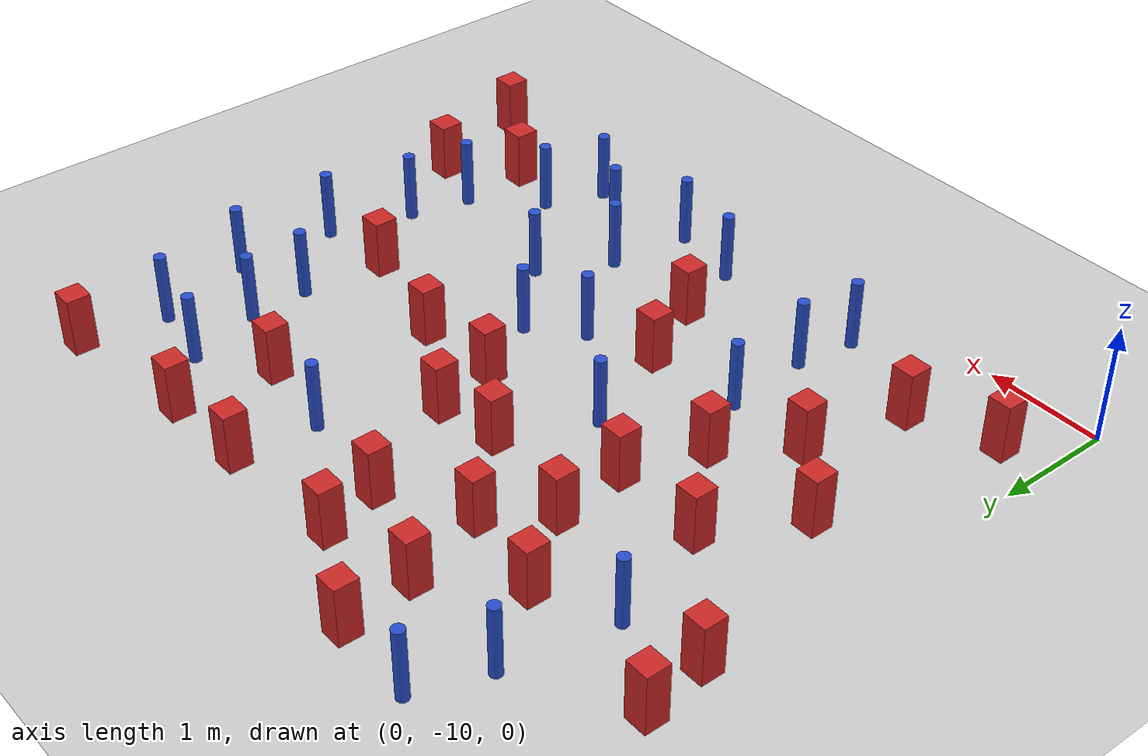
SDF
<sdf version="1.6">
 <world name="default">
  <model name="ground_plane">
   <static>1</static>
   <link name="link">
    <collision name="collision">
     <geometry><plane><normal>0 0 1</normal><size>100 100</size></plane></geometry>
     <surface><friction><ode><mu>100</mu><mu2>50</mu2></ode></friction></surface>
    </collision>
    <visual name="visual">
     <cast_shadows>0</cast_shadows>
     <geometry><plane><normal>0 0 1</normal><size>100 100</size></plane></geometry>
     <material>
      <ambient>1.0 1.0 1.0 1.0</ambient>
      <diffuse>0.8 0.8 0.8 1.0</diffuse>
      <specular>0.01 0.01 0.01 1.000000</specular>
     </material>
    </visual>
   </link>
  </model>
  <model name="square_post_obstacle0">
   <static>true</static>
   <pose>3.41499877253 -6.9940622312 8.22691968438e-08 7.22125133819e-06 -7.54495500217e-07 2.29674213826e-05</pose>
   <link name="link">
    <pose>0 0 0.25 0 -0 0</pose>
    <inertial>
     <mass>100</mass>
     <inertia>
      <ixx>0.166667</ixx>
      <ixy>0</ixy>
      <ixz>0</ixz>
      <iyy>0.166667</iyy>
      <iyz>0</iyz>
      <izz>0.166667</izz>
     </inertia>
    </inertial>
    <collision name="collision"><geometry><box><size>.2 .2 .5</size></box></geometry></collision>
    <visual name="visual">
     <geometry><box><size>.2 .2 .5</size></box></geometry>
     <material>
      <script><name>Gazebo/Red</name><uri>file://media/materials/scripts/gazebo.material</uri></script>
     </material>
    </visual>
   </link>
  </model>
  <model name="square_post_obstacle10">
   <static>true</static>
   <pose>3.06027018239 -8.713658144 8.22691968438e-08 7.22125133819e-06 -7.54495500217e-07 2.29674213826e-05</pose>
   <link name="link">
    <pose>0 0 0.25 0 -0 0</pose>
    <inertial>
     <mass>100</mass>
     <inertia>
      <ixx>0.166667</ixx>
      <ixy>0</ixy>
      <ixz>0</ixz>
      <iyy>0.166667</iyy>
      <iyz>0</iyz>
      <izz>0.166667</izz>
     </inertia>
    </inertial>
    <collision name="collision"><geometry><box><size>.2 .2 .5</size></box></geometry></collision>
    <visual name="visual">
     <geometry><box><size>.2 .2 .5</size></box></geometry>
     <material>
      <script><name>Gazebo/Red</name><uri>file://media/materials/scripts/gazebo.material</uri></script>
     </material>
    </visual>
   </link>
  </model>
  <model name="square_post_obstacle15">
   <static>true</static>
   <pose>4.46709414449 -5.74250624723 8.22691968438e-08 7.2212513382e-06 -7.54495500217e-07 2.29674213826e-05</pose>
   <link name="link">
    <pose>0 0 0.25 0 -0 0</pose>
    <inertial>
     <mass>100</mass>
     <inertia>
      <ixx>0.166667</ixx>
      <ixy>0</ixy>
      <ixz>0</ixz>
      <iyy>0.166667</iyy>
      <iyz>0</iyz>
      <izz>0.166667</izz>
     </inertia>
    </inertial>
    <collision name="collision"><geometry><box><size>.2 .2 .5</size></box></geometry></collision>
    <visual name="visual">
     <geometry><box><size>.2 .2 .5</size></box></geometry>
     <material>
      <script><name>Gazebo/Red</name><uri>file://media/materials/scripts/gazebo.material</uri></script>
     </material>
    </visual>
   </link>
  </model>
  <model name="pole_obstacle9">
   <static>true</static>
   <pose>2.44209046264 -7.28755723287 2.88873142074e-08 -9.90536689859e-09 4.60219948989e-07 -1.20965994961e-07</pose>
   <link name="link">
    <pose>0 0 0.3 0 -0 0</pose>
    <inertial>
     <mass>1</mass>
     <inertia><ixx>0.145833</ixx><ixy>0</ixy><ixz>0</ixz><iyy>0.145833</iyy><iyz>0</iyz><izz>0.125</izz></inertia>
    </inertial>
    <collision name="collision">
     <geometry><cylinder><radius>0.05</radius><length>.6</length></cylinder></geometry>
    </collision>
    <visual name="visual">
     <geometry><cylinder><radius>0.05</radius><length>.6</length></cylinder></geometry>
     <material>
      <script><name>Gazebo/Blue</name><uri>file://media/materials/scripts/gazebo.material</uri></script>
     </material>
    </visual>
   </link>
  </model>
  <model name="square_post_obstacle21">
   <static>true</static>
   <pose>2.12126127507 -5.90866148709 8.22691968438e-08 7.2212513382e-06 -7.54495500217e-07 2.29674213826e-05</pose>
   <link name="link">
    <pose>0 0 0.25 0 -0 0</pose>
    <inertial>
     <mass>100</mass>
     <inertia>
      <ixx>0.166667</ixx>
      <ixy>0</ixy>
      <ixz>0</ixz>
      <iyy>0.166667</iyy>
      <iyz>0</iyz>
      <izz>0.166667</izz>
     </inertia>
    </inertial>
    <collision name="collision"><geometry><box><size>.2 .2 .5</size></box></geometry></collision>
    <visual name="visual">
     <geometry><box><size>.2 .2 .5</size></box></geometry>
     <material>
      <script><name>Gazebo/Red</name><uri>file://media/materials/scripts/gazebo.material</uri></script>
     </material>
    </visual>
   </link>
  </model>
  <model name="pole_obstacle13">
   <static>true</static>
   <pose>1.12881644602 -4.58372194554 2.88873142074e-08 -9.90536689852e-09 4.60219948989e-07 -1.2096599496e-07</pose>
   <link name="link">
    <pose>0 0 0.3 0 -0 0</pose>
    <inertial>
     <mass>1</mass>
     <inertia><ixx>0.145833</ixx><ixy>0</ixy><ixz>0</ixz><iyy>0.145833</iyy><iyz>0</iyz><izz>0.125</izz></inertia>
    </inertial>
    <collision name="collision">
     <geometry><cylinder><radius>0.05</radius><length>.6</length></cylinder></geometry>
    </collision>
    <visual name="visual">
     <geometry><cylinder><radius>0.05</radius><length>.6</length></cylinder></geometry>
     <material>
      <script><name>Gazebo/Blue</name><uri>file://media/materials/scripts/gazebo.material</uri></script>
     </material>
    </visual>
   </link>
  </model>
  <model name="square_post_obstacle30">
   <static>true</static>
   <pose>2.66997323416 -5.03621889605 8.22691968438e-08 7.2212513382e-06 -7.54495500217e-07 2.29674213826e-05</pose>
   <link name="link">
    <pose>0 0 0.25 0 -0 0</pose>
    <inertial>
     <mass>100</mass>
     <inertia>
      <ixx>0.166667</ixx>
      <ixy>0</ixy>
      <ixz>0</ixz>
      <iyy>0.166667</iyy>
      <iyz>0</iyz>
      <izz>0.166667</izz>
     </inertia>
    </inertial>
    <collision name="collision"><geometry><box><size>.2 .2 .5</size></box></geometry></collision>
    <visual name="visual">
     <geometry><box><size>.2 .2 .5</size></box></geometry>
     <material>
      <script><name>Gazebo/Red</name><uri>file://media/materials/scripts/gazebo.material</uri></script>
     </material>
    </visual>
   </link>
  </model>
  <model name="pole_obstacle22">
   <static>true</static>
   <pose>5.65588016244 -7.86392539071 2.88873142074e-08 -9.90536690842e-09 4.60219948965e-07 -1.20965994976e-07</pose>
   <link name="link">
    <pose>0 0 0.3 0 -0 0</pose>
    <inertial>
     <mass>1</mass>
     <inertia><ixx>0.145833</ixx><ixy>0</ixy><ixz>0</ixz><iyy>0.145833</iyy><iyz>0</iyz><izz>0.125</izz></inertia>
    </inertial>
    <collision name="collision">
     <geometry><cylinder><radius>0.05</radius><length>.6</length></cylinder></geometry>
    </collision>
    <visual name="visual">
     <geometry><cylinder><radius>0.05</radius><length>.6</length></cylinder></geometry>
     <material>
      <script><name>Gazebo/Blue</name><uri>file://media/materials/scripts/gazebo.material</uri></script>
     </material>
    </visual>
   </link>
  </model>
  <model name="square_post_obstacle34">
   <static>true</static>
   <pose>1.86030978834 -6.99101832806 8.22691968438e-08 7.2212513382e-06 -7.54495500217e-07 2.29674213826e-05</pose>
   <link name="link">
    <pose>0 0 0.25 0 -0 0</pose>
    <inertial>
     <mass>100</mass>
     <inertia>
      <ixx>0.166667</ixx>
      <ixy>0</ixy>
      <ixz>0</ixz>
      <iyy>0.166667</iyy>
      <iyz>0</iyz>
      <izz>0.166667</izz>
     </inertia>
    </inertial>
    <collision name="collision"><geometry><box><size>.2 .2 .5</size></box></geometry></collision>
    <visual name="visual">
     <geometry><box><size>.2 .2 .5</size></box></geometry>
     <material>
      <script><name>Gazebo/Red</name><uri>file://media/materials/scripts/gazebo.material</uri></script>
     </material>
    </visual>
   </link>
  </model>
  <model name="square_post_obstacle42">
   <static>true</static>
   <pose>2.80579223207 -5.52921821048 8.22691968438e-08 7.22125133819e-06 -7.54495500217e-07 2.29674213826e-05</pose>
   <link name="link">
    <pose>0 0 0.25 0 -0 0</pose>
    <inertial>
     <mass>100</mass>
     <inertia>
      <ixx>0.166667</ixx>
      <ixy>0</ixy>
      <ixz>0</ixz>
      <iyy>0.166667</iyy>
      <iyz>0</iyz>
      <izz>0.166667</izz>
     </inertia>
    </inertial>
    <collision name="collision"><geometry><box><size>.2 .2 .5</size></box></geometry></collision>
    <visual name="visual">
     <geometry><box><size>.2 .2 .5</size></box></geometry>
     <material>
      <script><name>Gazebo/Red</name><uri>file://media/materials/scripts/gazebo.material</uri></script>
     </material>
    </visual>
   </link>
  </model>
  <model name="square_post_obstacle46">
   <static>true</static>
   <pose>1.05088032521 -6.96764763988 8.22691968438e-08 7.2212513382e-06 -7.54495500217e-07 2.29674213826e-05</pose>
   <link name="link">
    <pose>0 0 0.25 0 -0 0</pose>
    <inertial>
     <mass>100</mass>
     <inertia>
      <ixx>0.166667</ixx>
      <ixy>0</ixy>
      <ixz>0</ixz>
      <iyy>0.166667</iyy>
      <iyz>0</iyz>
      <izz>0.166667</izz>
     </inertia>
    </inertial>
    <collision name="collision"><geometry><box><size>.2 .2 .5</size></box></geometry></collision>
    <visual name="visual">
     <geometry><box><size>.2 .2 .5</size></box></geometry>
     <material>
      <script><name>Gazebo/Red</name><uri>file://media/materials/scripts/gazebo.material</uri></script>
     </material>
    </visual>
   </link>
  </model>
  <model name="pole_obstacle47">
   <static>true</static>
   <pose>3.26157933969 -9.32210993289 2.88873142074e-08 -9.90536692318e-09 4.6021994893e-07 -1.20965994988e-07</pose>
   <link name="link">
    <pose>0 0 0.3 0 -0 0</pose>
    <inertial>
     <mass>1</mass>
     <inertia><ixx>0.145833</ixx><ixy>0</ixy><ixz>0</ixz><iyy>0.145833</iyy><iyz>0</iyz><izz>0.125</izz></inertia>
    </inertial>
    <collision name="collision">
     <geometry><cylinder><radius>0.05</radius><length>.6</length></cylinder></geometry>
    </collision>
    <visual name="visual">
     <geometry><cylinder><radius>0.05</radius><length>.6</length></cylinder></geometry>
     <material>
      <script><name>Gazebo/Blue</name><uri>file://media/materials/scripts/gazebo.material</uri></script>
     </material>
    </visual>
   </link>
  </model>
  <model name="pole_obstacle50">
   <static>true</static>
   <pose>1.96846414027 -8.20121474283 2.88873142074e-08 -9.90536690287e-09 4.60219948978e-07 -1.20965994966e-07</pose>
   <link name="link">
    <pose>0 0 0.3 0 -0 0</pose>
    <inertial>
     <mass>1</mass>
     <inertia><ixx>0.145833</ixx><ixy>0</ixy><ixz>0</ixz><iyy>0.145833</iyy><iyz>0</iyz><izz>0.125</izz></inertia>
    </inertial>
    <collision name="collision">
     <geometry><cylinder><radius>0.05</radius><length>.6</length></cylinder></geometry>
    </collision>
    <visual name="visual">
     <geometry><cylinder><radius>0.05</radius><length>.6</length></cylinder></geometry>
     <material>
      <script><name>Gazebo/Blue</name><uri>file://media/materials/scripts/gazebo.material</uri></script>
     </material>
    </visual>
   </link>
  </model>
  <model name="square_post_obstacle57">
   <static>true</static>
   <pose>5.74404891023 -4.76503172191 8.22691968438e-08 7.22125133819e-06 -7.54495500217e-07 2.29674213826e-05</pose>
   <link name="link">
    <pose>0 0 0.25 0 -0 0</pose>
    <inertial>
     <mass>100</mass>
     <inertia>
      <ixx>0.166667</ixx>
      <ixy>0</ixy>
      <ixz>0</ixz>
      <iyy>0.166667</iyy>
      <iyz>0</iyz>
      <izz>0.166667</izz>
     </inertia>
    </inertial>
    <collision name="collision"><geometry><box><size>.2 .2 .5</size></box></geometry></collision>
    <visual name="visual">
     <geometry><box><size>.2 .2 .5</size></box></geometry>
     <material>
      <script><name>Gazebo/Red</name><uri>file://media/materials/scripts/gazebo.material</uri></script>
     </material>
    </visual>
   </link>
  </model>
  <model name="square_post_obstacle59">
   <static>true</static>
   <pose>1.65880312718 -7.65387423752 8.22691968438e-08 7.2212513382e-06 -7.54495500217e-07 2.29674213826e-05</pose>
   <link name="link">
    <pose>0 0 0.25 0 -0 0</pose>
    <inertial>
     <mass>100</mass>
     <inertia>
      <ixx>0.166667</ixx>
      <ixy>0</ixy>
      <ixz>0</ixz>
      <iyy>0.166667</iyy>
      <iyz>0</iyz>
      <izz>0.166667</izz>
     </inertia>
    </inertial>
    <collision name="collision"><geometry><box><size>.2 .2 .5</size></box></geometry></collision>
    <visual name="visual">
     <geometry><box><size>.2 .2 .5</size></box></geometry>
     <material>
      <script><name>Gazebo/Red</name><uri>file://media/materials/scripts/gazebo.material</uri></script>
     </material>
    </visual>
   </link>
  </model>
  <model name="pole_obstacle61">
   <static>true</static>
   <pose>5.85114196582 -7.15675604072 2.88873142074e-08 -9.90536690842e-09 4.60219948965e-07 -1.20965994976e-07</pose>
   <link name="link">
    <pose>0 0 0.3 0 -0 0</pose>
    <inertial>
     <mass>1</mass>
     <inertia><ixx>0.145833</ixx><ixy>0</ixy><ixz>0</ixz><iyy>0.145833</iyy><iyz>0</iyz><izz>0.125</izz></inertia>
    </inertial>
    <collision name="collision">
     <geometry><cylinder><radius>0.05</radius><length>.6</length></cylinder></geometry>
    </collision>
    <visual name="visual">
     <geometry><cylinder><radius>0.05</radius><length>.6</length></cylinder></geometry>
     <material>
      <script><name>Gazebo/Blue</name><uri>file://media/materials/scripts/gazebo.material</uri></script>
     </material>
    </visual>
   </link>
  </model>
  <model name="square_post_obstacle75">
   <static>true</static>
   <pose>0.11636944321 -6.18953005078 8.22691968438e-08 7.2212513382e-06 -7.54495500217e-07 2.29674213826e-05</pose>
   <link name="link">
    <pose>0 0 0.25 0 -0 0</pose>
    <inertial>
     <mass>100</mass>
     <inertia>
      <ixx>0.166667</ixx>
      <ixy>0</ixy>
      <ixz>0</ixz>
      <iyy>0.166667</iyy>
      <iyz>0</iyz>
      <izz>0.166667</izz>
     </inertia>
    </inertial>
    <collision name="collision"><geometry><box><size>.2 .2 .5</size></box></geometry></collision>
    <visual name="visual">
     <geometry><box><size>.2 .2 .5</size></box></geometry>
     <material>
      <script><name>Gazebo/Red</name><uri>file://media/materials/scripts/gazebo.material</uri></script>
     </material>
    </visual>
   </link>
  </model>
  <model name="pole_obstacle72">
   <static>true</static>
   <pose>3.98511871374 -8.73747123381 2.88873142074e-08 -9.90536692324e-09 4.6021994893e-07 -1.20965994987e-07</pose>
   <link name="link">
    <pose>0 0 0.3 0 -0 0</pose>
    <inertial>
     <mass>1</mass>
     <inertia><ixx>0.145833</ixx><ixy>0</ixy><ixz>0</ixz><iyy>0.145833</iyy><iyz>0</iyz><izz>0.125</izz></inertia>
    </inertial>
    <collision name="collision">
     <geometry><cylinder><radius>0.05</radius><length>.6</length></cylinder></geometry>
    </collision>
    <visual name="visual">
     <geometry><cylinder><radius>0.05</radius><length>.6</length></cylinder></geometry>
     <material>
      <script><name>Gazebo/Blue</name><uri>file://media/materials/scripts/gazebo.material</uri></script>
     </material>
    </visual>
   </link>
  </model>
  <model name="pole_obstacle82">
   <static>true</static>
   <pose>5.05393058101 -8.86143184928 2.88873142074e-08 -9.9053668967e-09 4.60219948993e-07 -1.20965994957e-07</pose>
   <link name="link">
    <pose>0 0 0.3 0 -0 0</pose>
    <inertial>
     <mass>1</mass>
     <inertia><ixx>0.145833</ixx><ixy>0</ixy><ixz>0</ixz><iyy>0.145833</iyy><iyz>0</iyz><izz>0.125</izz></inertia>
    </inertial>
    <collision name="collision">
     <geometry><cylinder><radius>0.05</radius><length>.6</length></cylinder></geometry>
    </collision>
    <visual name="visual">
     <geometry><cylinder><radius>0.05</radius><length>.6</length></cylinder></geometry>
     <material>
      <script><name>Gazebo/Blue</name><uri>file://media/materials/scripts/gazebo.material</uri></script>
     </material>
    </visual>
   </link>
  </model>
  <model name="square_post_obstacle82">
   <static>true</static>
   <pose>6.06898570075 -8.54711648579 8.22691968438e-08 7.22125133819e-06 -7.54495500217e-07 2.29674213826e-05</pose>
   <link name="link">
    <pose>0 0 0.25 0 -0 0</pose>
    <inertial>
     <mass>100</mass>
     <inertia>
      <ixx>0.166667</ixx>
      <ixy>0</ixy>
      <ixz>0</ixz>
      <iyy>0.166667</iyy>
      <iyz>0</iyz>
      <izz>0.166667</izz>
     </inertia>
    </inertial>
    <collision name="collision"><geometry><box><size>.2 .2 .5</size></box></geometry></collision>
    <visual name="visual">
     <geometry><box><size>.2 .2 .5</size></box></geometry>
     <material>
      <script><name>Gazebo/Red</name><uri>file://media/materials/scripts/gazebo.material</uri></script>
     </material>
    </visual>
   </link>
  </model>
  <model name="pole_obstacle91">
   <static>true</static>
   <pose>5.21240568172 -5.99870983056 2.88873142074e-08 -9.90536690842e-09 4.60219948965e-07 -1.20965994976e-07</pose>
   <link name="link">
    <pose>0 0 0.3 0 -0 0</pose>
    <inertial>
     <mass>1</mass>
     <inertia><ixx>0.145833</ixx><ixy>0</ixy><ixz>0</ixz><iyy>0.145833</iyy><iyz>0</iyz><izz>0.125</izz></inertia>
    </inertial>
    <collision name="collision">
     <geometry><cylinder><radius>0.05</radius><length>.6</length></cylinder></geometry>
    </collision>
    <visual name="visual">
     <geometry><cylinder><radius>0.05</radius><length>.6</length></cylinder></geometry>
     <material>
      <script><name>Gazebo/Blue</name><uri>file://media/materials/scripts/gazebo.material</uri></script>
     </material>
    </visual>
   </link>
  </model>
  <model name="square_post_obstacle83">
   <static>true</static>
   <pose>0.655817231026 -7.70713633223 8.22691968438e-08 7.2212513382e-06 -7.54495500217e-07 2.29674213826e-05</pose>
   <link name="link">
    <pose>0 0 0.25 0 -0 0</pose>
    <inertial>
     <mass>100</mass>
     <inertia>
      <ixx>0.166667</ixx>
      <ixy>0</ixy>
      <ixz>0</ixz>
      <iyy>0.166667</iyy>
      <iyz>0</iyz>
      <izz>0.166667</izz>
     </inertia>
    </inertial>
    <collision name="collision"><geometry><box><size>.2 .2 .5</size></box></geometry></collision>
    <visual name="visual">
     <geometry><box><size>.2 .2 .5</size></box></geometry>
     <material>
      <script><name>Gazebo/Red</name><uri>file://media/materials/scripts/gazebo.material</uri></script>
     </material>
    </visual>
   </link>
  </model>
  <model name="pole_obstacle105">
   <static>true</static>
   <pose>4.86913225671 -9.35954162575 2.88873142074e-08 -9.9053668967e-09 4.60219948993e-07 -1.20965994957e-07</pose>
   <link name="link">
    <pose>0 0 0.3 0 -0 0</pose>
    <inertial>
     <mass>1</mass>
     <inertia><ixx>0.145833</ixx><ixy>0</ixy><ixz>0</ixz><iyy>0.145833</iyy><iyz>0</iyz><izz>0.125</izz></inertia>
    </inertial>
    <collision name="collision">
     <geometry><cylinder><radius>0.05</radius><length>.6</length></cylinder></geometry>
    </collision>
    <visual name="visual">
     <geometry><cylinder><radius>0.05</radius><length>.6</length></cylinder></geometry>
     <material>
      <script><name>Gazebo/Blue</name><uri>file://media/materials/scripts/gazebo.material</uri></script>
     </material>
    </visual>
   </link>
  </model>
  <model name="pole_obstacle109">
   <static>true</static>
   <pose>5.63096577014 -5.47029018819 2.88873142074e-08 -9.90536690842e-09 4.60219948965e-07 -1.20965994976e-07</pose>
   <link name="link">
    <pose>0 0 0.3 0 -0 0</pose>
    <inertial>
     <mass>1</mass>
     <inertia><ixx>0.145833</ixx><ixy>0</ixy><ixz>0</ixz><iyy>0.145833</iyy><iyz>0</iyz><izz>0.125</izz></inertia>
    </inertial>
    <collision name="collision">
     <geometry><cylinder><radius>0.05</radius><length>.6</length></cylinder></geometry>
    </collision>
    <visual name="visual">
     <geometry><cylinder><radius>0.05</radius><length>.6</length></cylinder></geometry>
     <material>
      <script><name>Gazebo/Blue</name><uri>file://media/materials/scripts/gazebo.material</uri></script>
     </material>
    </visual>
   </link>
  </model>
  <model name="square_post_obstacle97">
   <static>true</static>
   <pose>1.78347799214 -6.36597442261 8.22691968438e-08 7.2212513382e-06 -7.54495500217e-07 2.29674213826e-05</pose>
   <link name="link">
    <pose>0 0 0.25 0 -0 0</pose>
    <inertial>
     <mass>100</mass>
     <inertia>
      <ixx>0.166667</ixx>
      <ixy>0</ixy>
      <ixz>0</ixz>
      <iyy>0.166667</iyy>
      <iyz>0</iyz>
      <izz>0.166667</izz>
     </inertia>
    </inertial>
    <collision name="collision"><geometry><box><size>.2 .2 .5</size></box></geometry></collision>
    <visual name="visual">
     <geometry><box><size>.2 .2 .5</size></box></geometry>
     <material>
      <script><name>Gazebo/Red</name><uri>file://media/materials/scripts/gazebo.material</uri></script>
     </material>
    </visual>
   </link>
  </model>
  <model name="pole_obstacle115">
   <static>true</static>
   <pose>2.02893996266 -8.93970983871 2.88873142074e-08 -9.90536692041e-09 4.60219948937e-07 -1.20965994983e-07</pose>
   <link name="link">
    <pose>0 0 0.3 0 -0 0</pose>
    <inertial>
     <mass>1</mass>
     <inertia><ixx>0.145833</ixx><ixy>0</ixy><ixz>0</ixz><iyy>0.145833</iyy><iyz>0</iyz><izz>0.125</izz></inertia>
    </inertial>
    <collision name="collision">
     <geometry><cylinder><radius>0.05</radius><length>.6</length></cylinder></geometry>
    </collision>
    <visual name="visual">
     <geometry><cylinder><radius>0.05</radius><length>.6</length></cylinder></geometry>
     <material>
      <script><name>Gazebo/Blue</name><uri>file://media/materials/scripts/gazebo.material</uri></script>
     </material>
    </visual>
   </link>
  </model>
  <model name="square_post_obstacle112">
   <static>true</static>
   <pose>1.2465935233 -8.20740997087 8.22691968438e-08 7.2212513382e-06 -7.54495500217e-07 2.29674213826e-05</pose>
   <link name="link">
    <pose>0 0 0.25 0 -0 0</pose>
    <inertial>
     <mass>100</mass>
     <inertia>
      <ixx>0.166667</ixx>
      <ixy>0</ixy>
      <ixz>0</ixz>
      <iyy>0.166667</iyy>
      <iyz>0</iyz>
      <izz>0.166667</izz>
     </inertia>
    </inertial>
    <collision name="collision"><geometry><box><size>.2 .2 .5</size></box></geometry></collision>
    <visual name="visual">
     <geometry><box><size>.2 .2 .5</size></box></geometry>
     <material>
      <script><name>Gazebo/Red</name><uri>file://media/materials/scripts/gazebo.material</uri></script>
     </material>
    </visual>
   </link>
  </model>
  <model name="pole_obstacle133">
   <static>true</static>
   <pose>5.24394905289 -6.51069378931 2.88873142074e-08 -9.90536690842e-09 4.60219948965e-07 -1.20965994976e-07</pose>
   <link name="link">
    <pose>0 0 0.3 0 -0 0</pose>
    <inertial>
     <mass>1</mass>
     <inertia><ixx>0.145833</ixx><ixy>0</ixy><ixz>0</ixz><iyy>0.145833</iyy><iyz>0</iyz><izz>0.125</izz></inertia>
    </inertial>
    <collision name="collision">
     <geometry><cylinder><radius>0.05</radius><length>.6</length></cylinder></geometry>
    </collision>
    <visual name="visual">
     <geometry><cylinder><radius>0.05</radius><length>.6</length></cylinder></geometry>
     <material>
      <script><name>Gazebo/Blue</name><uri>file://media/materials/scripts/gazebo.material</uri></script>
     </material>
    </visual>
   </link>
  </model>
  <model name="pole_obstacle135">
   <static>true</static>
   <pose>5.02459592247 -5.36712325978 2.88873142074e-08 -9.90536690842e-09 4.60219948965e-07 -1.20965994976e-07</pose>
   <link name="link">
    <pose>0 0 0.3 0 -0 0</pose>
    <inertial>
     <mass>1</mass>
     <inertia><ixx>0.145833</ixx><ixy>0</ixy><ixz>0</ixz><iyy>0.145833</iyy><iyz>0</iyz><izz>0.125</izz></inertia>
    </inertial>
    <collision name="collision">
     <geometry><cylinder><radius>0.05</radius><length>.6</length></cylinder></geometry>
    </collision>
    <visual name="visual">
     <geometry><cylinder><radius>0.05</radius><length>.6</length></cylinder></geometry>
     <material>
      <script><name>Gazebo/Blue</name><uri>file://media/materials/scripts/gazebo.material</uri></script>
     </material>
    </visual>
   </link>
  </model>
  <model name="square_post_obstacle116">
   <static>true</static>
   <pose>1.34241018511 -5.76261456552 8.22691968438e-08 7.2212513382e-06 -7.54495500217e-07 2.29674213826e-05</pose>
   <link name="link">
    <pose>0 0 0.25 0 -0 0</pose>
    <inertial>
     <mass>100</mass>
     <inertia>
      <ixx>0.166667</ixx>
      <ixy>0</ixy>
      <ixz>0</ixz>
      <iyy>0.166667</iyy>
      <iyz>0</iyz>
      <izz>0.166667</izz>
     </inertia>
    </inertial>
    <collision name="collision"><geometry><box><size>.2 .2 .5</size></box></geometry></collision>
    <visual name="visual">
     <geometry><box><size>.2 .2 .5</size></box></geometry>
     <material>
      <script><name>Gazebo/Red</name><uri>file://media/materials/scripts/gazebo.material</uri></script>
     </material>
    </visual>
   </link>
  </model>
  <model name="pole_obstacle136">
   <static>true</static>
   <pose>0.923517729923 -5.16026534854 2.88873142074e-08 -9.90536689661e-09 4.60219948993e-07 -1.20965994957e-07</pose>
   <link name="link">
    <pose>0 0 0.3 0 -0 0</pose>
    <inertial>
     <mass>1</mass>
     <inertia><ixx>0.145833</ixx><ixy>0</ixy><ixz>0</ixz><iyy>0.145833</iyy><iyz>0</iyz><izz>0.125</izz></inertia>
    </inertial>
    <collision name="collision">
     <geometry><cylinder><radius>0.05</radius><length>.6</length></cylinder></geometry>
    </collision>
    <visual name="visual">
     <geometry><cylinder><radius>0.05</radius><length>.6</length></cylinder></geometry>
     <material>
      <script><name>Gazebo/Blue</name><uri>file://media/materials/scripts/gazebo.material</uri></script>
     </material>
    </visual>
   </link>
  </model>
  <model name="square_post_obstacle120">
   <static>true</static>
   <pose>5.15481034264 -7.20989348582 8.22691968438e-08 7.2212513382e-06 -7.54495500217e-07 2.29674213826e-05</pose>
   <link name="link">
    <pose>0 0 0.25 0 -0 0</pose>
    <inertial>
     <mass>100</mass>
     <inertia>
      <ixx>0.166667</ixx>
      <ixy>0</ixy>
      <ixz>0</ixz>
      <iyy>0.166667</iyy>
      <iyz>0</iyz>
      <izz>0.166667</izz>
     </inertia>
    </inertial>
    <collision name="collision"><geometry><box><size>.2 .2 .5</size></box></geometry></collision>
    <visual name="visual">
     <geometry><box><size>.2 .2 .5</size></box></geometry>
     <material>
      <script><name>Gazebo/Red</name><uri>file://media/materials/scripts/gazebo.material</uri></script>
     </material>
    </visual>
   </link>
  </model>
  <model name="square_post_obstacle122">
   <static>true</static>
   <pose>1.05245784518 -9.07927730409 8.22691968438e-08 7.22125133819e-06 -7.54495500217e-07 2.29674213826e-05</pose>
   <link name="link">
    <pose>0 0 0.25 0 -0 0</pose>
    <inertial>
     <mass>100</mass>
     <inertia>
      <ixx>0.166667</ixx>
      <ixy>0</ixy>
      <ixz>0</ixz>
      <iyy>0.166667</iyy>
      <iyz>0</iyz>
      <izz>0.166667</izz>
     </inertia>
    </inertial>
    <collision name="collision"><geometry><box><size>.2 .2 .5</size></box></geometry></collision>
    <visual name="visual">
     <geometry><box><size>.2 .2 .5</size></box></geometry>
     <material>
      <script><name>Gazebo/Red</name><uri>file://media/materials/scripts/gazebo.material</uri></script>
     </material>
    </visual>
   </link>
  </model>
  <model name="square_post_obstacle124">
   <static>true</static>
   <pose>1.9016720874 -5.20918849085 8.22691968438e-08 7.2212513382e-06 -7.54495500217e-07 2.29674213826e-05</pose>
   <link name="link">
    <pose>0 0 0.25 0 -0 0</pose>
    <inertial>
     <mass>100</mass>
     <inertia>
      <ixx>0.166667</ixx>
      <ixy>0</ixy>
      <ixz>0</ixz>
      <iyy>0.166667</iyy>
      <iyz>0</iyz>
      <izz>0.166667</izz>
     </inertia>
    </inertial>
    <collision name="collision"><geometry><box><size>.2 .2 .5</size></box></geometry></collision>
    <visual name="visual">
     <geometry><box><size>.2 .2 .5</size></box></geometry>
     <material>
      <script><name>Gazebo/Red</name><uri>file://media/materials/scripts/gazebo.material</uri></script>
     </material>
    </visual>
   </link>
  </model>
  <model name="pole_obstacle143">
   <static>true</static>
   <pose>1.95619519306 -9.44738303358 2.88873142074e-08 -9.90536690287e-09 4.60219948978e-07 -1.20965994966e-07</pose>
   <link name="link">
    <pose>0 0 0.3 0 -0 0</pose>
    <inertial>
     <mass>1</mass>
     <inertia><ixx>0.145833</ixx><ixy>0</ixy><ixz>0</ixz><iyy>0.145833</iyy><iyz>0</iyz><izz>0.125</izz></inertia>
    </inertial>
    <collision name="collision">
     <geometry><cylinder><radius>0.05</radius><length>.6</length></cylinder></geometry>
    </collision>
    <visual name="visual">
     <geometry><cylinder><radius>0.05</radius><length>.6</length></cylinder></geometry>
     <material>
      <script><name>Gazebo/Blue</name><uri>file://media/materials/scripts/gazebo.material</uri></script>
     </material>
    </visual>
   </link>
  </model>
  <model name="pole_obstacle147">
   <static>true</static>
   <pose>5.85912017517 -6.29273153105 2.88873142074e-08 -9.90536690842e-09 4.60219948965e-07 -1.20965994976e-07</pose>
   <link name="link">
    <pose>0 0 0.3 0 -0 0</pose>
    <inertial>
     <mass>1</mass>
     <inertia><ixx>0.145833</ixx><ixy>0</ixy><ixz>0</ixz><iyy>0.145833</iyy><iyz>0</iyz><izz>0.125</izz></inertia>
    </inertial>
    <collision name="collision">
     <geometry><cylinder><radius>0.05</radius><length>.6</length></cylinder></geometry>
    </collision>
    <visual name="visual">
     <geometry><cylinder><radius>0.05</radius><length>.6</length></cylinder></geometry>
     <material>
      <script><name>Gazebo/Blue</name><uri>file://media/materials/scripts/gazebo.material</uri></script>
     </material>
    </visual>
   </link>
  </model>
  <model name="pole_obstacle149">
   <static>true</static>
   <pose>5.53286633413 -8.37876184728 2.88873142074e-08 -9.9053668967e-09 4.60219948993e-07 -1.20965994957e-07</pose>
   <link name="link">
    <pose>0 0 0.3 0 -0 0</pose>
    <inertial>
     <mass>1</mass>
     <inertia><ixx>0.145833</ixx><ixy>0</ixy><ixz>0</ixz><iyy>0.145833</iyy><iyz>0</iyz><izz>0.125</izz></inertia>
    </inertial>
    <collision name="collision">
     <geometry><cylinder><radius>0.05</radius><length>.6</length></cylinder></geometry>
    </collision>
    <visual name="visual">
     <geometry><cylinder><radius>0.05</radius><length>.6</length></cylinder></geometry>
     <material>
      <script><name>Gazebo/Blue</name><uri>file://media/materials/scripts/gazebo.material</uri></script>
     </material>
    </visual>
   </link>
  </model>
  <model name="square_post_obstacle141">
   <static>true</static>
   <pose>1.83334556844 -4.60707327268 8.22691968438e-08 7.2212513382e-06 -7.54495500217e-07 2.29674213826e-05</pose>
   <link name="link">
    <pose>0 0 0.25 0 -0 0</pose>
    <inertial>
     <mass>100</mass>
     <inertia>
      <ixx>0.166667</ixx>
      <ixy>0</ixy>
      <ixz>0</ixz>
      <iyy>0.166667</iyy>
      <iyz>0</iyz>
      <izz>0.166667</izz>
     </inertia>
    </inertial>
    <collision name="collision"><geometry><box><size>.2 .2 .5</size></box></geometry></collision>
    <visual name="visual">
     <geometry><box><size>.2 .2 .5</size></box></geometry>
     <material>
      <script><name>Gazebo/Red</name><uri>file://media/materials/scripts/gazebo.material</uri></script>
     </material>
    </visual>
   </link>
  </model>
  <model name="pole_obstacle153">
   <static>true</static>
   <pose>3.72204846077 -5.63779746674 2.88873142074e-08 -9.90536689859e-09 4.60219948989e-07 -1.20965994961e-07</pose>
   <link name="link">
    <pose>0 0 0.3 0 -0 0</pose>
    <inertial>
     <mass>1</mass>
     <inertia><ixx>0.145833</ixx><ixy>0</ixy><ixz>0</ixz><iyy>0.145833</iyy><iyz>0</iyz><izz>0.125</izz></inertia>
    </inertial>
    <collision name="collision">
     <geometry><cylinder><radius>0.05</radius><length>.6</length></cylinder></geometry>
    </collision>
    <visual name="visual">
     <geometry><cylinder><radius>0.05</radius><length>.6</length></cylinder></geometry>
     <material>
      <script><name>Gazebo/Blue</name><uri>file://media/materials/scripts/gazebo.material</uri></script>
     </material>
    </visual>
   </link>
  </model>
  <model name="square_post_obstacle142">
   <static>true</static>
   <pose>4.138963114 -6.94811749381 8.22691968438e-08 7.2212513382e-06 -7.54495500217e-07 2.29674213826e-05</pose>
   <link name="link">
    <pose>0 0 0.25 0 -0 0</pose>
    <inertial>
     <mass>100</mass>
     <inertia>
      <ixx>0.166667</ixx>
      <ixy>0</ixy>
      <ixz>0</ixz>
      <iyy>0.166667</iyy>
      <iyz>0</iyz>
      <izz>0.166667</izz>
     </inertia>
    </inertial>
    <collision name="collision"><geometry><box><size>.2 .2 .5</size></box></geometry></collision>
    <visual name="visual">
     <geometry><box><size>.2 .2 .5</size></box></geometry>
     <material>
      <script><name>Gazebo/Red</name><uri>file://media/materials/scripts/gazebo.material</uri></script>
     </material>
    </visual>
   </link>
  </model>
  <model name="pole_obstacle158">
   <static>true</static>
   <pose>4.2967845927 -8.14718496347 2.88873142074e-08 -9.9053668967e-09 4.60219948993e-07 -1.20965994957e-07</pose>
   <link name="link">
    <pose>0 0 0.3 0 -0 0</pose>
    <inertial>
     <mass>1</mass>
     <inertia><ixx>0.145833</ixx><ixy>0</ixy><ixz>0</ixz><iyy>0.145833</iyy><iyz>0</iyz><izz>0.125</izz></inertia>
    </inertial>
    <collision name="collision">
     <geometry><cylinder><radius>0.05</radius><length>.6</length></cylinder></geometry>
    </collision>
    <visual name="visual">
     <geometry><cylinder><radius>0.05</radius><length>.6</length></cylinder></geometry>
     <material>
      <script><name>Gazebo/Blue</name><uri>file://media/materials/scripts/gazebo.material</uri></script>
     </material>
    </visual>
   </link>
  </model>
  <model name="square_post_obstacle153">
   <static>true</static>
   <pose>5.54710486714 -8.97652430255 8.22691968438e-08 7.2212513382e-06 -7.54495500217e-07 2.29674213826e-05</pose>
   <link name="link">
    <pose>0 0 0.25 0 -0 0</pose>
    <inertial>
     <mass>100</mass>
     <inertia>
      <ixx>0.166667</ixx>
      <ixy>0</ixy>
      <ixz>0</ixz>
      <iyy>0.166667</iyy>
      <iyz>0</iyz>
      <izz>0.166667</izz>
     </inertia>
    </inertial>
    <collision name="collision"><geometry><box><size>.2 .2 .5</size></box></geometry></collision>
    <visual name="visual">
     <geometry><box><size>.2 .2 .5</size></box></geometry>
     <material>
      <script><name>Gazebo/Red</name><uri>file://media/materials/scripts/gazebo.material</uri></script>
     </material>
    </visual>
   </link>
  </model>
  <model name="square_post_obstacle155">
   <static>true</static>
   <pose>0.364991778486 -9.33899267308 8.22691968438e-08 7.2212513382e-06 -7.54495500217e-07 2.29674213826e-05</pose>
   <link name="link">
    <pose>0 0 0.25 0 -0 0</pose>
    <inertial>
     <mass>100</mass>
     <inertia>
      <ixx>0.166667</ixx>
      <ixy>0</ixy>
      <ixz>0</ixz>
      <iyy>0.166667</iyy>
      <iyz>0</iyz>
      <izz>0.166667</izz>
     </inertia>
    </inertial>
    <collision name="collision"><geometry><box><size>.2 .2 .5</size></box></geometry></collision>
    <visual name="visual">
     <geometry><box><size>.2 .2 .5</size></box></geometry>
     <material>
      <script><name>Gazebo/Red</name><uri>file://media/materials/scripts/gazebo.material</uri></script>
     </material>
    </visual>
   </link>
  </model>
  <model name="square_post_obstacle165">
   <static>true</static>
   <pose>2.74242144622 -6.53807983585 8.22691968438e-08 7.2212513382e-06 -7.54495500217e-07 2.29674213826e-05</pose>
   <link name="link">
    <pose>0 0 0.25 0 -0 0</pose>
    <inertial>
     <mass>100</mass>
     <inertia>
      <ixx>0.166667</ixx>
      <ixy>0</ixy>
      <ixz>0</ixz>
      <iyy>0.166667</iyy>
      <iyz>0</iyz>
      <izz>0.166667</izz>
     </inertia>
    </inertial>
    <collision name="collision"><geometry><box><size>.2 .2 .5</size></box></geometry></collision>
    <visual name="visual">
     <geometry><box><size>.2 .2 .5</size></box></geometry>
     <material>
      <script><name>Gazebo/Red</name><uri>file://media/materials/scripts/gazebo.material</uri></script>
     </material>
    </visual>
   </link>
  </model>
  <model name="square_post_obstacle167">
   <static>true</static>
   <pose>3.28673589581 -6.45479266919 8.22691968438e-08 7.2212513382e-06 -7.54495500217e-07 2.29674213826e-05</pose>
   <link name="link">
    <pose>0 0 0.25 0 -0 0</pose>
    <inertial>
     <mass>100</mass>
     <inertia>
      <ixx>0.166667</ixx>
      <ixy>0</ixy>
      <ixz>0</ixz>
      <iyy>0.166667</iyy>
      <iyz>0</iyz>
      <izz>0.166667</izz>
     </inertia>
    </inertial>
    <collision name="collision"><geometry><box><size>.2 .2 .5</size></box></geometry></collision>
    <visual name="visual">
     <geometry><box><size>.2 .2 .5</size></box></geometry>
     <material>
      <script><name>Gazebo/Red</name><uri>file://media/materials/scripts/gazebo.material</uri></script>
     </material>
    </visual>
   </link>
  </model>
  <model name="pole_obstacle183">
   <static>true</static>
   <pose>3.73064271997 -7.58272213314 2.88873142074e-08 -9.90536689859e-09 4.60219948989e-07 -1.20965994961e-07</pose>
   <link name="link">
    <pose>0 0 0.3 0 -0 0</pose>
    <inertial>
     <mass>1</mass>
     <inertia><ixx>0.145833</ixx><ixy>0</ixy><ixz>0</ixz><iyy>0.145833</iyy><iyz>0</iyz><izz>0.125</izz></inertia>
    </inertial>
    <collision name="collision">
     <geometry><cylinder><radius>0.05</radius><length>.6</length></cylinder></geometry>
    </collision>
    <visual name="visual">
     <geometry><cylinder><radius>0.05</radius><length>.6</length></cylinder></geometry>
     <material>
      <script><name>Gazebo/Blue</name><uri>file://media/materials/scripts/gazebo.material</uri></script>
     </material>
    </visual>
   </link>
  </model>
  <model name="pole_obstacle184">
   <static>true</static>
   <pose>3.89124701696 -9.43796616574 2.88873142074e-08 -9.90536692318e-09 4.6021994893e-07 -1.20965994988e-07</pose>
   <link name="link">
    <pose>0 0 0.3 0 -0 0</pose>
    <inertial>
     <mass>1</mass>
     <inertia><ixx>0.145833</ixx><ixy>0</ixy><ixz>0</ixz><iyy>0.145833</iyy><iyz>0</iyz><izz>0.125</izz></inertia>
    </inertial>
    <collision name="collision">
     <geometry><cylinder><radius>0.05</radius><length>.6</length></cylinder></geometry>
    </collision>
    <visual name="visual">
     <geometry><cylinder><radius>0.05</radius><length>.6</length></cylinder></geometry>
     <material>
      <script><name>Gazebo/Blue</name><uri>file://media/materials/scripts/gazebo.material</uri></script>
     </material>
    </visual>
   </link>
  </model>
  <model name="square_post_obstacle173">
   <static>true</static>
   <pose>6.32527321209 -9.48009809162 8.22691968438e-08 7.22125133819e-06 -7.54495500217e-07 2.29674213826e-05</pose>
   <link name="link">
    <pose>0 0 0.25 0 -0 0</pose>
    <inertial>
     <mass>100</mass>
     <inertia>
      <ixx>0.166667</ixx>
      <ixy>0</ixy>
      <ixz>0</ixz>
      <iyy>0.166667</iyy>
      <iyz>0</iyz>
      <izz>0.166667</izz>
     </inertia>
    </inertial>
    <collision name="collision"><geometry><box><size>.2 .2 .5</size></box></geometry></collision>
    <visual name="visual">
     <geometry><box><size>.2 .2 .5</size></box></geometry>
     <material>
      <script><name>Gazebo/Red</name><uri>file://media/materials/scripts/gazebo.material</uri></script>
     </material>
    </visual>
   </link>
  </model>
  <model name="square_post_obstacle182">
   <static>true</static>
   <pose>2.75783755159 -8.09180695108 8.22691968438e-08 7.2212513382e-06 -7.54495500217e-07 2.29674213826e-05</pose>
   <link name="link">
    <pose>0 0 0.25 0 -0 0</pose>
    <inertial>
     <mass>100</mass>
     <inertia>
      <ixx>0.166667</ixx>
      <ixy>0</ixy>
      <ixz>0</ixz>
      <iyy>0.166667</iyy>
      <iyz>0</iyz>
      <izz>0.166667</izz>
     </inertia>
    </inertial>
    <collision name="collision"><geometry><box><size>.2 .2 .5</size></box></geometry></collision>
    <visual name="visual">
     <geometry><box><size>.2 .2 .5</size></box></geometry>
     <material>
      <script><name>Gazebo/Red</name><uri>file://media/materials/scripts/gazebo.material</uri></script>
     </material>
    </visual>
   </link>
  </model>
  <model name="square_post_obstacle200">
   <static>true</static>
   <pose>4.53952485373 -4.93037261629 8.22691968438e-08 7.2212513382e-06 -7.54495500217e-07 2.29674213826e-05</pose>
   <link name="link">
    <pose>0 0 0.25 0 -0 0</pose>
    <inertial>
     <mass>100</mass>
     <inertia>
      <ixx>0.166667</ixx>
      <ixy>0</ixy>
      <ixz>0</ixz>
      <iyy>0.166667</iyy>
      <iyz>0</iyz>
      <izz>0.166667</izz>
     </inertia>
    </inertial>
    <collision name="collision"><geometry><box><size>.2 .2 .5</size></box></geometry></collision>
    <visual name="visual">
     <geometry><box><size>.2 .2 .5</size></box></geometry>
     <material>
      <script><name>Gazebo/Red</name><uri>file://media/materials/scripts/gazebo.material</uri></script>
     </material>
    </visual>
   </link>
  </model>
  <model name="pole_obstacle193">
   <static>true</static>
   <pose>3.33909682047 -7.91082750805 2.88873142074e-08 -9.90536689859e-09 4.60219948989e-07 -1.20965994961e-07</pose>
   <link name="link">
    <pose>0 0 0.3 0 -0 0</pose>
    <inertial>
     <mass>1</mass>
     <inertia><ixx>0.145833</ixx><ixy>0</ixy><ixz>0</ixz><iyy>0.145833</iyy><iyz>0</iyz><izz>0.125</izz></inertia>
    </inertial>
    <collision name="collision">
     <geometry><cylinder><radius>0.05</radius><length>.6</length></cylinder></geometry>
    </collision>
    <visual name="visual">
     <geometry><cylinder><radius>0.05</radius><length>.6</length></cylinder></geometry>
     <material>
      <script><name>Gazebo/Blue</name><uri>file://media/materials/scripts/gazebo.material</uri></script>
     </material>
    </visual>
   </link>
  </model>
  <model name="pole_obstacle197">
   <static>true</static>
   <pose>0.753745316787 -6.06537367445 2.88873142074e-08 -9.90536689661e-09 4.60219948993e-07 -1.20965994957e-07</pose>
   <link name="link">
    <pose>0 0 0.3 0 -0 0</pose>
    <inertial>
     <mass>1</mass>
     <inertia><ixx>0.145833</ixx><ixy>0</ixy><ixz>0</ixz><iyy>0.145833</iyy><iyz>0</iyz><izz>0.125</izz></inertia>
    </inertial>
    <collision name="collision">
     <geometry><cylinder><radius>0.05</radius><length>.6</length></cylinder></geometry>
    </collision>
    <visual name="visual">
     <geometry><cylinder><radius>0.05</radius><length>.6</length></cylinder></geometry>
     <material>
      <script><name>Gazebo/Blue</name><uri>file://media/materials/scripts/gazebo.material</uri></script>
     </material>
    </visual>
   </link>
  </model>
  <model name="pole_obstacle199">
   <static>true</static>
   <pose>4.41058415109 -9.10103572842 2.88873142074e-08 -9.9053668967e-09 4.60219948993e-07 -1.20965994957e-07</pose>
   <link name="link">
    <pose>0 0 0.3 0 -0 0</pose>
    <inertial>
     <mass>1</mass>
     <inertia><ixx>0.145833</ixx><ixy>0</ixy><ixz>0</ixz><iyy>0.145833</iyy><iyz>0</iyz><izz>0.125</izz></inertia>
    </inertial>
    <collision name="collision">
     <geometry><cylinder><radius>0.05</radius><length>.6</length></cylinder></geometry>
    </collision>
    <visual name="visual">
     <geometry><cylinder><radius>0.05</radius><length>.6</length></cylinder></geometry>
     <material>
      <script><name>Gazebo/Blue</name><uri>file://media/materials/scripts/gazebo.material</uri></script>
     </material>
    </visual>
   </link>
  </model>
  <model name="square_post_obstacle206">
   <static>true</static>
   <pose>0.0346565279776 -5.64852137044 8.22691968438e-08 7.22125133819e-06 -7.54495500217e-07 2.29674213826e-05</pose>
   <link name="link">
    <pose>0 0 0.25 0 -0 0</pose>
    <inertial>
     <mass>100</mass>
     <inertia>
      <ixx>0.166667</ixx>
      <ixy>0</ixy>
      <ixz>0</ixz>
      <iyy>0.166667</iyy>
      <iyz>0</iyz>
      <izz>0.166667</izz>
     </inertia>
    </inertial>
    <collision name="collision"><geometry><box><size>.2 .2 .5</size></box></geometry></collision>
    <visual name="visual">
     <geometry><box><size>.2 .2 .5</size></box></geometry>
     <material>
      <script><name>Gazebo/Red</name><uri>file://media/materials/scripts/gazebo.material</uri></script>
     </material>
    </visual>
   </link>
  </model>
  <model name="square_post_obstacle211">
   <static>true</static>
   <pose>3.76392003262 -4.95622003534 8.22691968438e-08 7.2212513382e-06 -7.54495500217e-07 2.29674213826e-05</pose>
   <link name="link">
    <pose>0 0 0.25 0 -0 0</pose>
    <inertial>
     <mass>100</mass>
     <inertia>
      <ixx>0.166667</ixx>
      <ixy>0</ixy>
      <ixz>0</ixz>
      <iyy>0.166667</iyy>
      <iyz>0</iyz>
      <izz>0.166667</izz>
     </inertia>
    </inertial>
    <collision name="collision"><geometry><box><size>.2 .2 .5</size></box></geometry></collision>
    <visual name="visual">
     <geometry><box><size>.2 .2 .5</size></box></geometry>
     <material>
      <script><name>Gazebo/Red</name><uri>file://media/materials/scripts/gazebo.material</uri></script>
     </material>
    </visual>
   </link>
  </model>
 </world>
</sdf>
